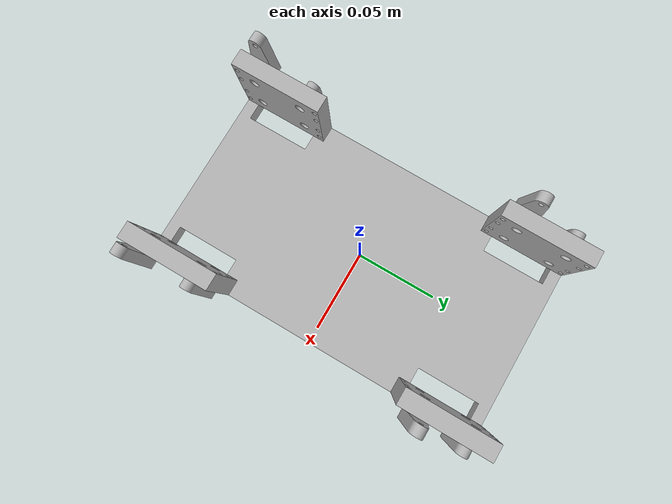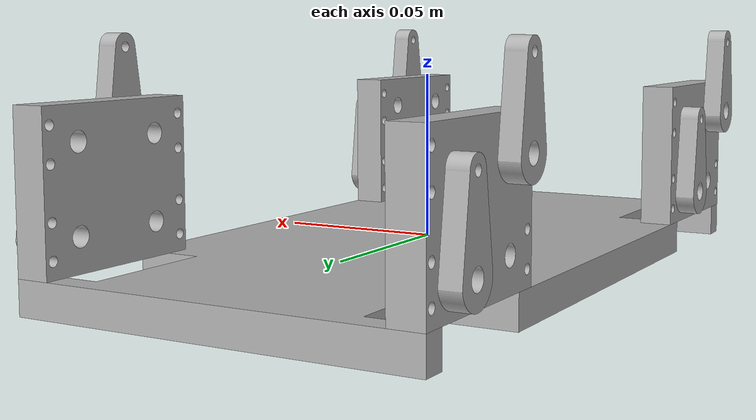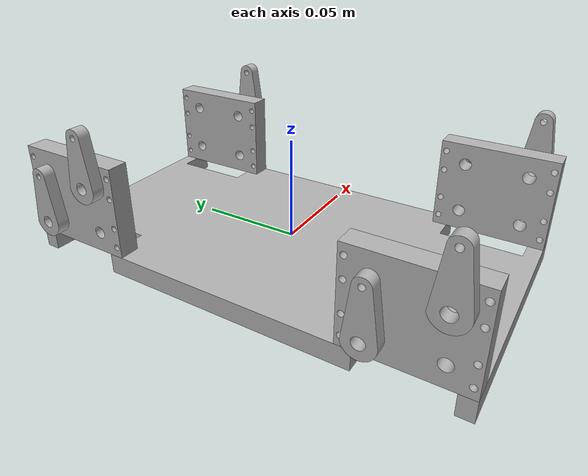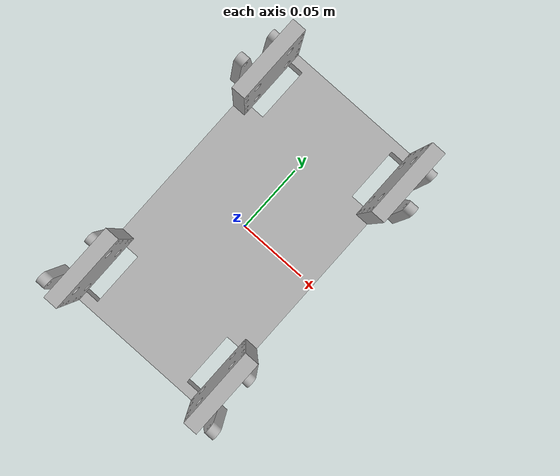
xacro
<?xml version="1.0" ?>
<robot name="urdf_model2" xmlns:xacro="http://www.ros.org/wiki/xacro">

<xacro:include filename="$(find urdf_model2_description)/urdf/materials.xacro" />
<xacro:include filename="$(find urdf_model2_description)/urdf/urdf_model2.trans" />
<xacro:include filename="$(find urdf_model2_description)/urdf/urdf_model2.gazebo" />
<link name="base_link">
  <inertial>
    <origin xyz="-8.881784197001253e-18 -1.7763568394002505e-17 -0.0050000000000000044" rpy="0 0 0"/>
    <mass value="1.8212"/>
    <inertia ixx="0.006618" iyy="0.001866" izz="0.008454" ixy="0.0" iyz="-0.0" ixz="-0.0"/>
  </inertial>
  <visual>
    <origin xyz="0 0 0" rpy="0 0 0"/>
    <geometry>
      <mesh filename="file://$(find urdf_model2_description)/meshes/base_link.stl" scale="0.001 0.001 0.001"/>
    </geometry>
    <material name="silver"/>
  </visual>
  <collision>
    <origin xyz="0 0 0" rpy="0 0 0"/>
    <geometry>
      <mesh filename="file://$(find urdf_model2_description)/meshes/base_link.stl" scale="0.001 0.001 0.001"/>
    </geometry>
  </collision>
</link>

<link name="urdf_case3_1">
  <inertial>
    <origin xyz="-0.005000000000000032 -0.02725000000001962 0.02249999999999998" rpy="0 0 0"/>
    <mass value="0.17920403874143231"/>
    <inertia ixx="7.3e-05" iyy="3.2e-05" izz="4.4e-05" ixy="0.0" iyz="0.0" ixz="0.0"/>
  </inertial>
  <visual>
    <origin xyz="-0.06 -0.11 0.0" rpy="0 0 0"/>
    <geometry>
      <mesh filename="file://$(find urdf_model2_description)/meshes/urdf_case3_1.stl" scale="0.001 0.001 0.001"/>
    </geometry>
    <material name="silver"/>
  </visual>
  <collision>
    <origin xyz="-0.06 -0.11 0.0" rpy="0 0 0"/>
    <geometry>
      <mesh filename="file://$(find urdf_model2_description)/meshes/urdf_case3_1.stl" scale="0.001 0.001 0.001"/>
    </geometry>
  </collision>
</link>

<link name="urdf_case1_1">
  <inertial>
    <origin xyz="-0.005000000000000018 0.02724999999998083 0.022500000000000266" rpy="0 0 0"/>
    <mass value="0.17920403874143231"/>
    <inertia ixx="7.3e-05" iyy="3.2e-05" izz="4.4e-05" ixy="0.0" iyz="0.0" ixz="0.0"/>
  </inertial>
  <visual>
    <origin xyz="-0.06 0.11 0.0" rpy="0 0 0"/>
    <geometry>
      <mesh filename="file://$(find urdf_model2_description)/meshes/urdf_case1_1.stl" scale="0.001 0.001 0.001"/>
    </geometry>
    <material name="silver"/>
  </visual>
  <collision>
    <origin xyz="-0.06 0.11 0.0" rpy="0 0 0"/>
    <geometry>
      <mesh filename="file://$(find urdf_model2_description)/meshes/urdf_case1_1.stl" scale="0.001 0.001 0.001"/>
    </geometry>
  </collision>
</link>

<link name="urdf_case4_1">
  <inertial>
    <origin xyz="0.005000000000000018 -0.02725000000001962 0.022500000000000006" rpy="0 0 0"/>
    <mass value="0.17920403874143234"/>
    <inertia ixx="7.3e-05" iyy="3.2e-05" izz="4.4e-05" ixy="0.0" iyz="0.0" ixz="0.0"/>
  </inertial>
  <visual>
    <origin xyz="0.06 -0.11 0.0" rpy="0 0 0"/>
    <geometry>
      <mesh filename="file://$(find urdf_model2_description)/meshes/urdf_case4_1.stl" scale="0.001 0.001 0.001"/>
    </geometry>
    <material name="silver"/>
  </visual>
  <collision>
    <origin xyz="0.06 -0.11 0.0" rpy="0 0 0"/>
    <geometry>
      <mesh filename="file://$(find urdf_model2_description)/meshes/urdf_case4_1.stl" scale="0.001 0.001 0.001"/>
    </geometry>
  </collision>
</link>

<link name="urdf_case2_1">
  <inertial>
    <origin xyz="0.005000000000000025 0.027249999999980817 0.022500000000000204" rpy="0 0 0"/>
    <mass value="0.17920403874143231"/>
    <inertia ixx="7.3e-05" iyy="3.2e-05" izz="4.4e-05" ixy="0.0" iyz="0.0" ixz="0.0"/>
  </inertial>
  <visual>
    <origin xyz="0.06 0.11 0.0" rpy="0 0 0"/>
    <geometry>
      <mesh filename="file://$(find urdf_model2_description)/meshes/urdf_case2_1.stl" scale="0.001 0.001 0.001"/>
    </geometry>
    <material name="silver"/>
  </visual>
  <collision>
    <origin xyz="0.06 0.11 0.0" rpy="0 0 0"/>
    <geometry>
      <mesh filename="file://$(find urdf_model2_description)/meshes/urdf_case2_1.stl" scale="0.001 0.001 0.001"/>
    </geometry>
  </collision>
</link>

<link name="arm_r1_1">
  <inertial>
    <origin xyz="0.002999999999999989 -0.0001246939829592647 0.008981178939690256" rpy="0 0 0"/>
    <mass value="0.016544213046378313"/>
    <inertia ixx="2e-06" iyy="1e-06" izz="0.0" ixy="-0.0" iyz="0.0" ixz="0.0"/>
  </inertial>
  <visual>
    <origin xyz="-0.06 0.0975 -0.035" rpy="0 0 0"/>
    <geometry>
      <mesh filename="file://$(find urdf_model2_description)/meshes/arm_r1_1.stl" scale="0.001 0.001 0.001"/>
    </geometry>
    <material name="silver"/>
  </visual>
  <collision>
    <origin xyz="-0.06 0.0975 -0.035" rpy="0 0 0"/>
    <geometry>
      <mesh filename="file://$(find urdf_model2_description)/meshes/arm_r1_1.stl" scale="0.001 0.001 0.001"/>
    </geometry>
  </collision>
</link>

<link name="arm_r2_1">
  <inertial>
    <origin xyz="0.0029999999999999333 -0.00012469398295902878 0.008981178939690188" rpy="0 0 0"/>
    <mass value="0.016544213046378313"/>
    <inertia ixx="2e-06" iyy="1e-06" izz="0.0" ixy="-0.0" iyz="0.0" ixz="0.0"/>
  </inertial>
  <visual>
    <origin xyz="-0.06 0.068 -0.01" rpy="0 0 0"/>
    <geometry>
      <mesh filename="file://$(find urdf_model2_description)/meshes/arm_r2_1.stl" scale="0.001 0.001 0.001"/>
    </geometry>
    <material name="silver"/>
  </visual>
  <collision>
    <origin xyz="-0.06 0.068 -0.01" rpy="0 0 0"/>
    <geometry>
      <mesh filename="file://$(find urdf_model2_description)/meshes/arm_r2_1.stl" scale="0.001 0.001 0.001"/>
    </geometry>
  </collision>
</link>

<link name="arm_r3_1">
  <inertial>
    <origin xyz="0.002999999999999947 -0.00012469398295987533 0.008981178939689971" rpy="0 0 0"/>
    <mass value="0.016544213046378313"/>
    <inertia ixx="2e-06" iyy="1e-06" izz="0.0" ixy="-0.0" iyz="0.0" ixz="0.0"/>
  </inertial>
  <visual>
    <origin xyz="-0.06 -0.068 -0.035" rpy="0 0 0"/>
    <geometry>
      <mesh filename="file://$(find urdf_model2_description)/meshes/arm_r3_1.stl" scale="0.001 0.001 0.001"/>
    </geometry>
    <material name="silver"/>
  </visual>
  <collision>
    <origin xyz="-0.06 -0.068 -0.035" rpy="0 0 0"/>
    <geometry>
      <mesh filename="file://$(find urdf_model2_description)/meshes/arm_r3_1.stl" scale="0.001 0.001 0.001"/>
    </geometry>
  </collision>
</link>

<link name="arm_r4_1">
  <inertial>
    <origin xyz="0.002999999999999961 -0.00012469398295934797 0.008981178939689903" rpy="0 0 0"/>
    <mass value="0.016544213046378313"/>
    <inertia ixx="2e-06" iyy="1e-06" izz="0.0" ixy="-0.0" iyz="0.0" ixz="0.0"/>
  </inertial>
  <visual>
    <origin xyz="-0.06 -0.0975 -0.01" rpy="0 0 0"/>
    <geometry>
      <mesh filename="file://$(find urdf_model2_description)/meshes/arm_r4_1.stl" scale="0.001 0.001 0.001"/>
    </geometry>
    <material name="silver"/>
  </visual>
  <collision>
    <origin xyz="-0.06 -0.0975 -0.01" rpy="0 0 0"/>
    <geometry>
      <mesh filename="file://$(find urdf_model2_description)/meshes/arm_r4_1.stl" scale="0.001 0.001 0.001"/>
    </geometry>
  </collision>
</link>

<link name="arm_l1_1">
  <inertial>
    <origin xyz="-0.002999999999999989 -0.00012469398295948675 0.008981178939690186" rpy="0 0 0"/>
    <mass value="0.016544213046378313"/>
    <inertia ixx="2e-06" iyy="1e-06" izz="0.0" ixy="-0.0" iyz="0.0" ixz="0.0"/>
  </inertial>
  <visual>
    <origin xyz="0.06 0.0975 -0.035" rpy="0 0 0"/>
    <geometry>
      <mesh filename="file://$(find urdf_model2_description)/meshes/arm_l1_1.stl" scale="0.001 0.001 0.001"/>
    </geometry>
    <material name="silver"/>
  </visual>
  <collision>
    <origin xyz="0.06 0.0975 -0.035" rpy="0 0 0"/>
    <geometry>
      <mesh filename="file://$(find urdf_model2_description)/meshes/arm_l1_1.stl" scale="0.001 0.001 0.001"/>
    </geometry>
  </collision>
</link>

<link name="arm_l2_1">
  <inertial>
    <origin xyz="-0.0030000000000000165 -0.00012469398295930634 0.008981178939690188" rpy="0 0 0"/>
    <mass value="0.016544213046378313"/>
    <inertia ixx="2e-06" iyy="1e-06" izz="0.0" ixy="-0.0" iyz="0.0" ixz="0.0"/>
  </inertial>
  <visual>
    <origin xyz="0.06 0.068 -0.01" rpy="0 0 0"/>
    <geometry>
      <mesh filename="file://$(find urdf_model2_description)/meshes/arm_l2_1.stl" scale="0.001 0.001 0.001"/>
    </geometry>
    <material name="silver"/>
  </visual>
  <collision>
    <origin xyz="0.06 0.068 -0.01" rpy="0 0 0"/>
    <geometry>
      <mesh filename="file://$(find urdf_model2_description)/meshes/arm_l2_1.stl" scale="0.001 0.001 0.001"/>
    </geometry>
  </collision>
</link>

<link name="arm_l3_1">
  <inertial>
    <origin xyz="-0.0030000000000000443 -0.00012469398295994472 0.008981178939689971" rpy="0 0 0"/>
    <mass value="0.016544213046378313"/>
    <inertia ixx="2e-06" iyy="1e-06" izz="0.0" ixy="-0.0" iyz="0.0" ixz="0.0"/>
  </inertial>
  <visual>
    <origin xyz="0.06 -0.068 -0.035" rpy="0 0 0"/>
    <geometry>
      <mesh filename="file://$(find urdf_model2_description)/meshes/arm_l3_1.stl" scale="0.001 0.001 0.001"/>
    </geometry>
    <material name="silver"/>
  </visual>
  <collision>
    <origin xyz="0.06 -0.068 -0.035" rpy="0 0 0"/>
    <geometry>
      <mesh filename="file://$(find urdf_model2_description)/meshes/arm_l3_1.stl" scale="0.001 0.001 0.001"/>
    </geometry>
  </collision>
</link>

<link name="arm_l4_1">
  <inertial>
    <origin xyz="-0.0029999999999999333 -0.00012469398295955614 0.008981178939690011" rpy="0 0 0"/>
    <mass value="0.016544213046378313"/>
    <inertia ixx="2e-06" iyy="1e-06" izz="0.0" ixy="-0.0" iyz="0.0" ixz="0.0"/>
  </inertial>
  <visual>
    <origin xyz="0.06 -0.0975 -0.01" rpy="0 0 0"/>
    <geometry>
      <mesh filename="file://$(find urdf_model2_description)/meshes/arm_l4_1.stl" scale="0.001 0.001 0.001"/>
    </geometry>
    <material name="silver"/>
  </visual>
  <collision>
    <origin xyz="0.06 -0.0975 -0.01" rpy="0 0 0"/>
    <geometry>
      <mesh filename="file://$(find urdf_model2_description)/meshes/arm_l4_1.stl" scale="0.001 0.001 0.001"/>
    </geometry>
  </collision>
</link>

<joint name="Rigid 5" type="fixed">
  <origin xyz="0.06 0.11 0.0" rpy="0 0 0"/>
  <parent link="base_link"/>
  <child link="urdf_case3_1"/>
</joint>

<joint name="Rigid 6" type="fixed">
  <origin xyz="0.06 -0.11 0.0" rpy="0 0 0"/>
  <parent link="base_link"/>
  <child link="urdf_case1_1"/>
</joint>

<joint name="Rigid 7" type="fixed">
  <origin xyz="-0.06 0.11 0.0" rpy="0 0 0"/>
  <parent link="base_link"/>
  <child link="urdf_case4_1"/>
</joint>

<joint name="Rigid 8" type="fixed">
  <origin xyz="-0.06 -0.11 0.0" rpy="0 0 0"/>
  <parent link="base_link"/>
  <child link="urdf_case2_1"/>
</joint>

<joint name="arm_case1" type="continuous">
  <origin xyz="0.0 0.0125 0.035" rpy="0 0 0"/>
  <parent link="urdf_case1_1"/>
  <child link="arm_r1_1"/>
  <axis xyz="-1.0 -0.0 0.0"/>
</joint>

<joint name="arm_case2" type="continuous">
  <origin xyz="0.0 0.042 0.01" rpy="0 0 0"/>
  <parent link="urdf_case1_1"/>
  <child link="arm_r2_1"/>
  <axis xyz="-1.0 -0.0 0.0"/>
</joint>

<joint name="arm_case3" type="continuous">
  <origin xyz="0.0 -0.042 0.035" rpy="0 0 0"/>
  <parent link="urdf_case3_1"/>
  <child link="arm_r3_1"/>
  <axis xyz="-1.0 -0.0 -0.0"/>
</joint>

<joint name="arm_case4" type="continuous">
  <origin xyz="0.0 -0.0125 0.01" rpy="0 0 0"/>
  <parent link="urdf_case3_1"/>
  <child link="arm_r4_1"/>
  <axis xyz="-1.0 -0.0 -0.0"/>
</joint>

<joint name="Revolute 13" type="continuous">
  <origin xyz="0.0 0.0125 0.035" rpy="0 0 0"/>
  <parent link="urdf_case2_1"/>
  <child link="arm_l1_1"/>
  <axis xyz="-1.0 -0.0 -0.0"/>
</joint>

<joint name="Revolute 14" type="continuous">
  <origin xyz="0.0 0.042 0.01" rpy="0 0 0"/>
  <parent link="urdf_case2_1"/>
  <child link="arm_l2_1"/>
  <axis xyz="-1.0 -0.0 -0.0"/>
</joint>

<joint name="Revolute 15" type="continuous">
  <origin xyz="0.0 -0.042 0.035" rpy="0 0 0"/>
  <parent link="urdf_case4_1"/>
  <child link="arm_l3_1"/>
  <axis xyz="-1.0 -0.0 -0.0"/>
</joint>

<joint name="Revolute 16" type="continuous">
  <origin xyz="0.0 -0.0125 0.01" rpy="0 0 0"/>
  <parent link="urdf_case4_1"/>
  <child link="arm_l4_1"/>
  <axis xyz="-1.0 -0.0 -0.0"/>
</joint>

</robot>

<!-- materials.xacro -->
<robot name="urdf_model2" xmlns:xacro="http://www.ros.org/wiki/xacro" >

<material name="silver">
  <color rgba="0.700 0.700 0.700 1.000"/>
</material>

</robot>

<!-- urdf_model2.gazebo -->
<robot name="urdf_model2" xmlns:xacro="http://www.ros.org/wiki/xacro" >

<xacro:property name="body_color" value="Gazebo/Silver" />

<gazebo>
  <plugin name="control" filename="libgazebo_ros_control.so"/>
</gazebo>
<gazebo reference="base_link">
  <material>${body_color}</material>
  <mu1>0.2</mu1>
  <mu2>0.2</mu2>
  <self_collide>true</self_collide>
  <gravity>true</gravity>
</gazebo>

<gazebo reference="urdf_case3_1">
  <material>${body_color}</material>
  <mu1>0.2</mu1>
  <mu2>0.2</mu2>
  <self_collide>true</self_collide>
</gazebo>

<gazebo reference="urdf_case1_1">
  <material>${body_color}</material>
  <mu1>0.2</mu1>
  <mu2>0.2</mu2>
  <self_collide>true</self_collide>
</gazebo>

<gazebo reference="urdf_case4_1">
  <material>${body_color}</material>
  <mu1>0.2</mu1>
  <mu2>0.2</mu2>
  <self_collide>true</self_collide>
</gazebo>

<gazebo reference="urdf_case2_1">
  <material>${body_color}</material>
  <mu1>0.2</mu1>
  <mu2>0.2</mu2>
  <self_collide>true</self_collide>
</gazebo>

<gazebo reference="arm_r1_1">
  <material>${body_color}</material>
  <mu1>0.2</mu1>
  <mu2>0.2</mu2>
  <self_collide>true</self_collide>
</gazebo>

<gazebo reference="arm_r2_1">
  <material>${body_color}</material>
  <mu1>0.2</mu1>
  <mu2>0.2</mu2>
  <self_collide>true</self_collide>
</gazebo>

<gazebo reference="arm_r3_1">
  <material>${body_color}</material>
  <mu1>0.2</mu1>
  <mu2>0.2</mu2>
  <self_collide>true</self_collide>
</gazebo>

<gazebo reference="arm_r4_1">
  <material>${body_color}</material>
  <mu1>0.2</mu1>
  <mu2>0.2</mu2>
  <self_collide>true</self_collide>
</gazebo>

<gazebo reference="arm_l1_1">
  <material>${body_color}</material>
  <mu1>0.2</mu1>
  <mu2>0.2</mu2>
  <self_collide>true</self_collide>
</gazebo>

<gazebo reference="arm_l2_1">
  <material>${body_color}</material>
  <mu1>0.2</mu1>
  <mu2>0.2</mu2>
  <self_collide>true</self_collide>
</gazebo>

<gazebo reference="arm_l3_1">
  <material>${body_color}</material>
  <mu1>0.2</mu1>
  <mu2>0.2</mu2>
  <self_collide>true</self_collide>
</gazebo>

<gazebo reference="arm_l4_1">
  <material>${body_color}</material>
  <mu1>0.2</mu1>
  <mu2>0.2</mu2>
  <self_collide>true</self_collide>
</gazebo>

</robot>
